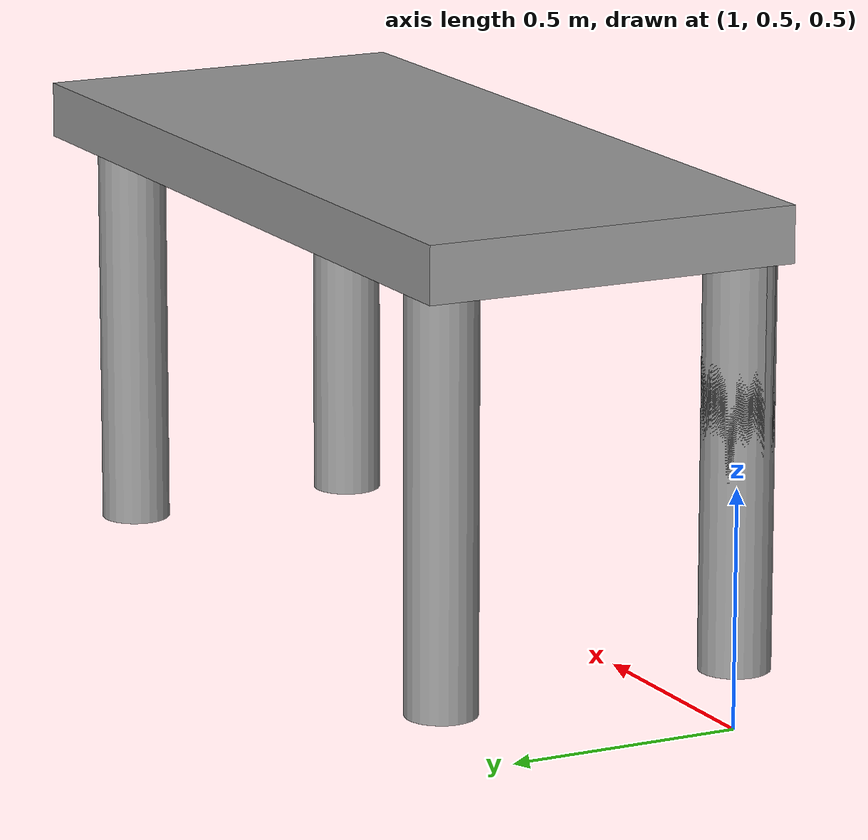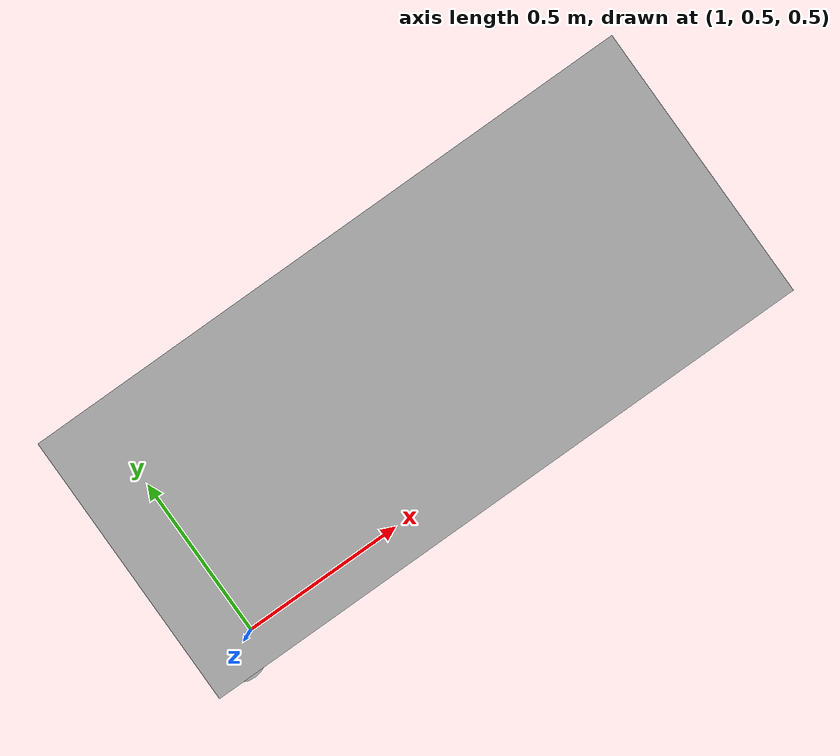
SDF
<?xml version='1.0'?>
<sdf version='1.6'>
  <model name='table'>
    <link name='link_0'>
      <pose frame=''>1.8055 0.833362 1.52998 0 -0 0</pose>
      <inertial>
        <mass>0.45487</mass>
        <inertia>
          <ixx>0.089863</ixx>
          <ixy>0</ixy>
          <ixz>0</ixz>
          <iyy>0.241732</iyy>
          <iyz>0</iyz>
          <izz>0.330549</izz>
        </inertia>
        <pose frame=''>0 0 0 0 -0 0</pose>
      </inertial>
      <self_collide>0</self_collide>
      <kinematic>0</kinematic>
      <visual name='visual'>
        <pose frame=''>0 0 0 0 -0 0</pose>
        <geometry>
          <box>
            <size>1.8 0.8 0.117454</size>
          </box>
        </geometry>
        <material>
          <lighting>1</lighting>
          <script>
            <uri>file://media/materials/scripts/gazebo.material</uri>
            <name>Gazebo/Grey</name>
          </script>
          <ambient>0.3 0.3 0.3 1</ambient>
          <diffuse>0.7 0.7 0.7 1</diffuse>
          <specular>0.01 0.01 0.01 1</specular>
          <emissive>0 0 0 1</emissive>
          <shader type='vertex'>
            <normal_map>__default__</normal_map>
          </shader>
        </material>
        <cast_shadows>1</cast_shadows>
        <transparency>0</transparency>
      </visual>
      <collision name='collision'>
        <laser_retro>0</laser_retro>
        <max_contacts>10</max_contacts>
        <pose frame=''>0 0 0 0 -0 0</pose>
        <geometry>
          <box>
            <size>1.8 0.8 0.117454</size>
          </box>
        </geometry>
        <surface>
          <friction>
            <ode>
              <mu>1</mu>
              <mu2>1</mu2>
              <fdir1>0 0 0</fdir1>
              <slip1>0</slip1>
              <slip2>0</slip2>
            </ode>
            <torsional>
              <coefficient>1</coefficient>
              <patch_radius>0</patch_radius>
              <surface_radius>0</surface_radius>
              <use_patch_radius>1</use_patch_radius>
              <ode>
                <slip>0</slip>
              </ode>
            </torsional>
          </friction>
          <bounce>
            <restitution_coefficient>0</restitution_coefficient>
            <threshold>1e+06</threshold>
          </bounce>
          <contact>
            <collide_without_contact>0</collide_without_contact>
            <collide_without_contact_bitmask>1</collide_without_contact_bitmask>
            <collide_bitmask>1</collide_bitmask>
            <ode>
              <soft_cfm>0</soft_cfm>
              <soft_erp>0.2</soft_erp>
              <kp>1e+13</kp>
              <kd>1</kd>
              <max_vel>0.01</max_vel>
              <min_depth>0</min_depth>
            </ode>
            <bullet>
              <split_impulse>1</split_impulse>
              <split_impulse_penetration_threshold>-0.01</split_impulse_penetration_threshold>
              <soft_cfm>0</soft_cfm>
              <soft_erp>0.2</soft_erp>
              <kp>1e+13</kp>
              <kd>1</kd>
            </bullet>
          </contact>
        </surface>
      </collision>
    </link>
    <link name='link_1'>
      <pose frame=''>1.00734 0.496856 1.07514 0 -0 0</pose>
      <inertial>
        <mass>0.0339085</mass>
        <inertia>
          <ixx>0.00689116</ixx>
          <ixy>0</ixy>
          <ixz>0</ixz>
          <iyy>0.00689116</iyy>
          <iyz>0</iyz>
          <izz>9.234e-05</izz>
        </inertia>
        <pose frame=''>0 0 0 0 -0 0</pose>
      </inertial>
      <self_collide>0</self_collide>
      <kinematic>0</kinematic>
      <visual name='visual'>
        <pose frame=''>0 0 0 0 -0 0</pose>
        <geometry>
          <cylinder>
            <radius>0.073807</radius>
            <length>0.900001</length>
          </cylinder>
        </geometry>
        <material>
          <lighting>1</lighting>
          <script>
            <uri>file://media/materials/scripts/gazebo.material</uri>
            <name>Gazebo/Grey</name>
          </script>
          <ambient>0.3 0.3 0.3 1</ambient>
          <diffuse>0.7 0.7 0.7 1</diffuse>
          <specular>0.01 0.01 0.01 1</specular>
          <emissive>0 0 0 1</emissive>
          <shader type='vertex'>
            <normal_map>__default__</normal_map>
          </shader>
        </material>
        <cast_shadows>1</cast_shadows>
        <transparency>0</transparency>
      </visual>
      <visual name='ModelPreview_0::link_1::visual_1'>
        <pose frame=''>0 0 0 0 -0 0</pose>
        <geometry>
          <cylinder>
            <radius>0.073807</radius>
            <length>0.9</length>
          </cylinder>
        </geometry>
        <material>
          <lighting>1</lighting>
          <script>
            <uri>file://media/materials/scripts/gazebo.material</uri>
            <name>Gazebo/Grey</name>
          </script>
          <ambient>0.3 0.3 0.3 1</ambient>
          <diffuse>0.7 0.7 0.7 1</diffuse>
          <specular>0.01 0.01 0.01 1</specular>
          <emissive>0 0 0 1</emissive>
          <shader type='vertex'>
            <normal_map>__default__</normal_map>
          </shader>
        </material>
        <cast_shadows>1</cast_shadows>
        <transparency>0</transparency>
      </visual>
      <collision name='collision'>
        <laser_retro>0</laser_retro>
        <max_contacts>10</max_contacts>
        <pose frame=''>0 0 0 0 -0 0</pose>
        <geometry>
          <cylinder>
            <radius>0.073807</radius>
            <length>0.900001</length>
          </cylinder>
        </geometry>
        <surface>
          <friction>
            <ode>
              <mu>1</mu>
              <mu2>1</mu2>
              <fdir1>0 0 0</fdir1>
              <slip1>0</slip1>
              <slip2>0</slip2>
            </ode>
            <torsional>
              <coefficient>1</coefficient>
              <patch_radius>0</patch_radius>
              <surface_radius>0</surface_radius>
              <use_patch_radius>1</use_patch_radius>
              <ode>
                <slip>0</slip>
              </ode>
            </torsional>
          </friction>
          <bounce>
            <restitution_coefficient>0</restitution_coefficient>
            <threshold>1e+06</threshold>
          </bounce>
          <contact>
            <collide_without_contact>0</collide_without_contact>
            <collide_without_contact_bitmask>1</collide_without_contact_bitmask>
            <collide_bitmask>1</collide_bitmask>
            <ode>
              <soft_cfm>0</soft_cfm>
              <soft_erp>0.2</soft_erp>
              <kp>1e+13</kp>
              <kd>1</kd>
              <max_vel>0.01</max_vel>
              <min_depth>0</min_depth>
            </ode>
            <bullet>
              <split_impulse>1</split_impulse>
              <split_impulse_penetration_threshold>-0.01</split_impulse_penetration_threshold>
              <soft_cfm>0</soft_cfm>
              <soft_erp>0.2</soft_erp>
              <kp>1e+13</kp>
              <kd>1</kd>
            </bullet>
          </contact>
        </surface>
      </collision>
    </link>
    <link name='link_1_clone'>
      <pose frame=''>2.61517 0.570568 1.07431 0 -0 0</pose>
      <inertial>
        <mass>0.0339085</mass>
        <inertia>
          <ixx>0.00689116</ixx>
          <ixy>0</ixy>
          <ixz>0</ixz>
          <iyy>0.00689116</iyy>
          <iyz>0</iyz>
          <izz>9.234e-05</izz>
        </inertia>
        <pose frame=''>0 0 0 0 -0 0</pose>
      </inertial>
      <self_collide>0</self_collide>
      <kinematic>0</kinematic>
      <visual name='visual'>
        <pose frame=''>0 0 0 0 -0 0</pose>
        <geometry>
          <cylinder>
            <radius>0.073807</radius>
            <length>0.9</length>
          </cylinder>
        </geometry>
        <material>
          <lighting>1</lighting>
          <script>
            <uri>file://media/materials/scripts/gazebo.material</uri>
            <name>Gazebo/Grey</name>
          </script>
          <ambient>0.3 0.3 0.3 1</ambient>
          <diffuse>0.7 0.7 0.7 1</diffuse>
          <specular>0.01 0.01 0.01 1</specular>
          <emissive>0 0 0 1</emissive>
          <shader type='vertex'>
            <normal_map>__default__</normal_map>
          </shader>
        </material>
        <cast_shadows>1</cast_shadows>
        <transparency>0</transparency>
      </visual>
      <collision name='collision'>
        <laser_retro>0</laser_retro>
        <max_contacts>10</max_contacts>
        <pose frame=''>0 0 0 0 -0 0</pose>
        <geometry>
          <cylinder>
            <radius>0.073807</radius>
            <length>0.9</length>
          </cylinder>
        </geometry>
        <surface>
          <friction>
            <ode>
              <mu>1</mu>
              <mu2>1</mu2>
              <fdir1>0 0 0</fdir1>
              <slip1>0</slip1>
              <slip2>0</slip2>
            </ode>
            <torsional>
              <coefficient>1</coefficient>
              <patch_radius>0</patch_radius>
              <surface_radius>0</surface_radius>
              <use_patch_radius>1</use_patch_radius>
              <ode>
                <slip>0</slip>
              </ode>
            </torsional>
          </friction>
          <bounce>
            <restitution_coefficient>0</restitution_coefficient>
            <threshold>1e+06</threshold>
          </bounce>
          <contact>
            <collide_without_contact>0</collide_without_contact>
            <collide_without_contact_bitmask>1</collide_without_contact_bitmask>
            <collide_bitmask>1</collide_bitmask>
            <ode>
              <soft_cfm>0</soft_cfm>
              <soft_erp>0.2</soft_erp>
              <kp>1e+13</kp>
              <kd>1</kd>
              <max_vel>0.01</max_vel>
              <min_depth>0</min_depth>
            </ode>
            <bullet>
              <split_impulse>1</split_impulse>
              <split_impulse_penetration_threshold>-0.01</split_impulse_penetration_threshold>
              <soft_cfm>0</soft_cfm>
              <soft_erp>0.2</soft_erp>
              <kp>1e+13</kp>
              <kd>1</kd>
            </bullet>
          </contact>
        </surface>
      </collision>
    </link>
    <link name='link_1_clone_0'>
      <pose frame=''>2.62457 1.08492 1.0677 0 -0 0</pose>
      <inertial>
        <mass>0.0339085</mass>
        <inertia>
          <ixx>0.00689116</ixx>
          <ixy>0</ixy>
          <ixz>0</ixz>
          <iyy>0.00689116</iyy>
          <iyz>0</iyz>
          <izz>9.234e-05</izz>
        </inertia>
        <pose frame=''>0 0 0 0 -0 0</pose>
      </inertial>
      <self_collide>0</self_collide>
      <kinematic>0</kinematic>
      <visual name='visual'>
        <pose frame=''>0 0 0 0 -0 0</pose>
        <geometry>
          <cylinder>
            <radius>0.073807</radius>
            <length>0.9</length>
          </cylinder>
        </geometry>
        <material>
          <lighting>1</lighting>
          <script>
            <uri>file://media/materials/scripts/gazebo.material</uri>
            <name>Gazebo/Grey</name>
          </script>
          <ambient>0.3 0.3 0.3 1</ambient>
          <diffuse>0.7 0.7 0.7 1</diffuse>
          <specular>0.01 0.01 0.01 1</specular>
          <emissive>0 0 0 1</emissive>
          <shader type='vertex'>
            <normal_map>__default__</normal_map>
          </shader>
        </material>
        <cast_shadows>1</cast_shadows>
        <transparency>0</transparency>
      </visual>
      <collision name='collision'>
        <laser_retro>0</laser_retro>
        <max_contacts>10</max_contacts>
        <pose frame=''>0 0 0 0 -0 0</pose>
        <geometry>
          <cylinder>
            <radius>0.073807</radius>
            <length>0.9</length>
          </cylinder>
        </geometry>
        <surface>
          <friction>
            <ode>
              <mu>1</mu>
              <mu2>1</mu2>
              <fdir1>0 0 0</fdir1>
              <slip1>0</slip1>
              <slip2>0</slip2>
            </ode>
            <torsional>
              <coefficient>1</coefficient>
              <patch_radius>0</patch_radius>
              <surface_radius>0</surface_radius>
              <use_patch_radius>1</use_patch_radius>
              <ode>
                <slip>0</slip>
              </ode>
            </torsional>
          </friction>
          <bounce>
            <restitution_coefficient>0</restitution_coefficient>
            <threshold>1e+06</threshold>
          </bounce>
          <contact>
            <collide_without_contact>0</collide_without_contact>
            <collide_without_contact_bitmask>1</collide_without_contact_bitmask>
            <collide_bitmask>1</collide_bitmask>
            <ode>
              <soft_cfm>0</soft_cfm>
              <soft_erp>0.2</soft_erp>
              <kp>1e+13</kp>
              <kd>1</kd>
              <max_vel>0.01</max_vel>
              <min_depth>0</min_depth>
            </ode>
            <bullet>
              <split_impulse>1</split_impulse>
              <split_impulse_penetration_threshold>-0.01</split_impulse_penetration_threshold>
              <soft_cfm>0</soft_cfm>
              <soft_erp>0.2</soft_erp>
              <kp>1e+13</kp>
              <kd>1</kd>
            </bullet>
          </contact>
        </surface>
      </collision>
    </link>
    <link name='link_1_clone_1'>
      <pose frame=''>1.01114 1.15421 1.07072 0 -0 0</pose>
      <inertial>
        <mass>0.0339085</mass>
        <inertia>
          <ixx>0.00689116</ixx>
          <ixy>0</ixy>
          <ixz>0</ixz>
          <iyy>0.00689116</iyy>
          <iyz>0</iyz>
          <izz>9.234e-05</izz>
        </inertia>
        <pose frame=''>0 0 0 0 -0 0</pose>
      </inertial>
      <self_collide>0</self_collide>
      <kinematic>0</kinematic>
      <visual name='visual'>
        <pose frame=''>0 0 0 0 -0 0</pose>
        <geometry>
          <cylinder>
            <radius>0.073807</radius>
            <length>0.9</length>
          </cylinder>
        </geometry>
        <material>
          <lighting>1</lighting>
          <script>
            <uri>file://media/materials/scripts/gazebo.material</uri>
            <name>Gazebo/Grey</name>
          </script>
          <ambient>0.3 0.3 0.3 1</ambient>
          <diffuse>0.7 0.7 0.7 1</diffuse>
          <specular>0.01 0.01 0.01 1</specular>
          <emissive>0 0 0 1</emissive>
          <shader type='vertex'>
            <normal_map>__default__</normal_map>
          </shader>
        </material>
        <cast_shadows>1</cast_shadows>
        <transparency>0</transparency>
      </visual>
      <collision name='collision'>
        <laser_retro>0</laser_retro>
        <max_contacts>10</max_contacts>
        <pose frame=''>0 0 0 0 -0 0</pose>
        <geometry>
          <cylinder>
            <radius>0.073807</radius>
            <length>0.9</length>
          </cylinder>
        </geometry>
        <surface>
          <friction>
            <ode>
              <mu>1</mu>
              <mu2>1</mu2>
              <fdir1>0 0 0</fdir1>
              <slip1>0</slip1>
              <slip2>0</slip2>
            </ode>
            <torsional>
              <coefficient>1</coefficient>
              <patch_radius>0</patch_radius>
              <surface_radius>0</surface_radius>
              <use_patch_radius>1</use_patch_radius>
              <ode>
                <slip>0</slip>
              </ode>
            </torsional>
          </friction>
          <bounce>
            <restitution_coefficient>0</restitution_coefficient>
            <threshold>1e+06</threshold>
          </bounce>
          <contact>
            <collide_without_contact>0</collide_without_contact>
            <collide_without_contact_bitmask>1</collide_without_contact_bitmask>
            <collide_bitmask>1</collide_bitmask>
            <ode>
              <soft_cfm>0</soft_cfm>
              <soft_erp>0.2</soft_erp>
              <kp>1e+13</kp>
              <kd>1</kd>
              <max_vel>0.01</max_vel>
              <min_depth>0</min_depth>
            </ode>
            <bullet>
              <split_impulse>1</split_impulse>
              <split_impulse_penetration_threshold>-0.01</split_impulse_penetration_threshold>
              <soft_cfm>0</soft_cfm>
              <soft_erp>0.2</soft_erp>
              <kp>1e+13</kp>
              <kd>1</kd>
            </bullet>
          </contact>
        </surface>
      </collision>
    </link>
    <static>1</static>
    <allow_auto_disable>1</allow_auto_disable>
  </model>
</sdf>
